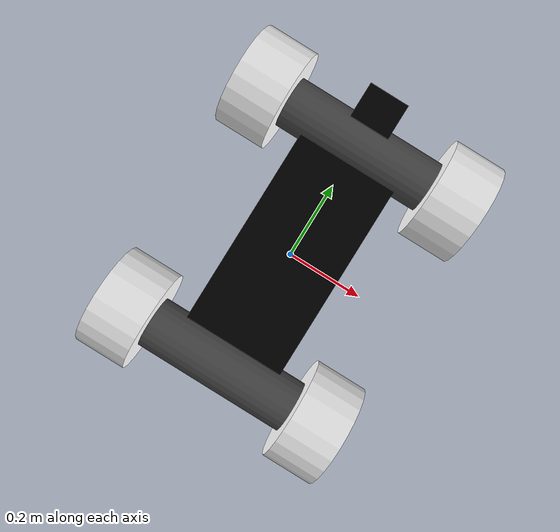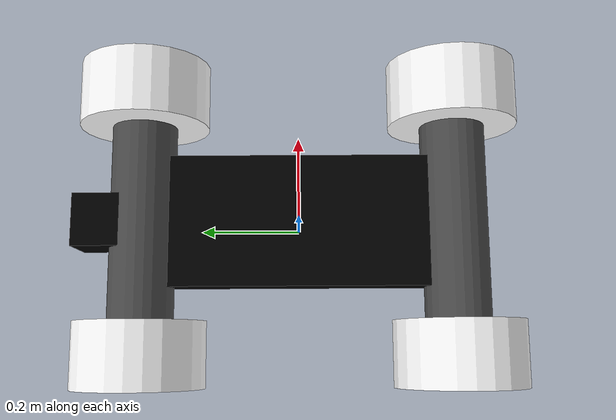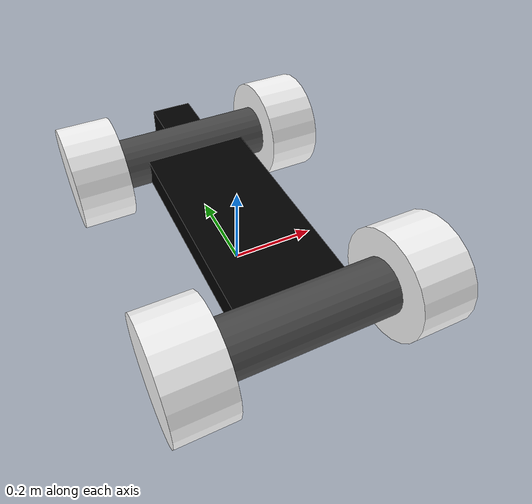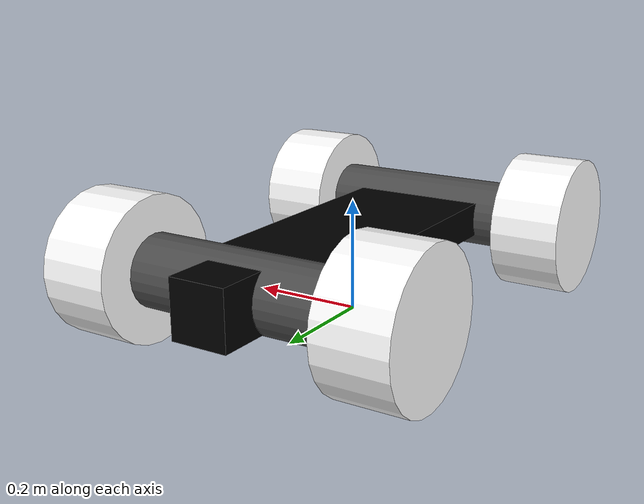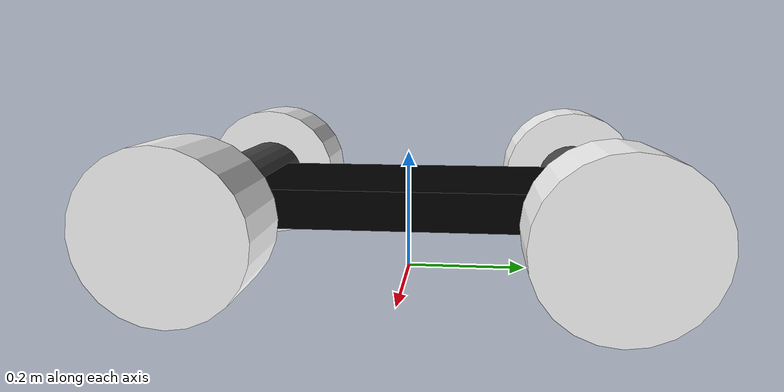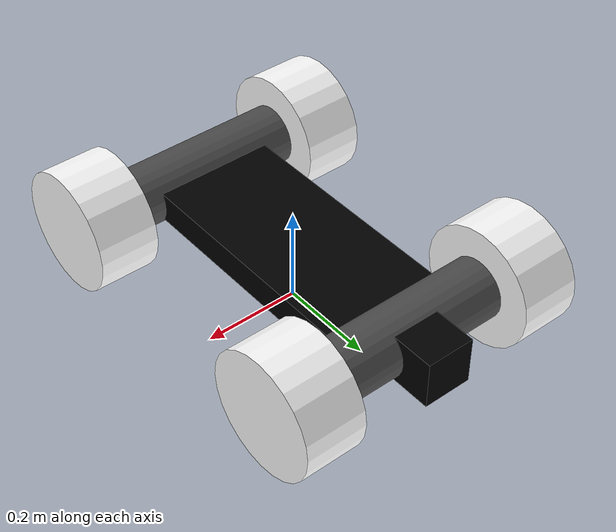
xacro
<?xml version="1.0"?>
<robot name="car_model" xmlns:xacro="http://www.ros.org/wiki/xacro">

        <material name="black">
                <color rgba="0 0 0 1"/>
        </material>
        <material name="blue">
                <color rgba="0 0 0.8 1"/>
        </material>
        <material name="white">
                <color rgba="1 1 1 1"/>
        </material>
        <material name="gray">
                <color rgba="0.3 0.3 0.3 1"/>
        </material>

        <xacro:property name="wheelradius" value="0.125" />
        <xacro:property name="baselength" value="0.5" />
        <xacro:property name="baseheight" value="${wheelradius}" />
        <xacro:property name="axlelength" value="0.4" />
        <xacro:property name="update_rate" value="5.0" />

        <xacro:property name="base_mass" value="1e+0" />
        <xacro:property name="axle_mass" value="1e-1" />
        <xacro:property name="wheel_mass" value="1e+0" />
        <xacro:property name="camera_mass" value="1e-2" />

        <xacro:macro name="gazebo_wheel_elements" >
                <mu1 value="300.0"/>
                <mu2 value="100.0"/>
                <kp value="100000.0" />
                <kd value="1.0" />
                <material>Gazebo/White</material>
        </xacro:macro>

        <xacro:macro name="default_inertial" params="mass">
                <inertial>
                        <mass value="${mass}" />
                        <inertia ixx="${mass*0.01}" ixy="0.0" ixz="0.0" iyy="${mass*0.01}" iyz="0.0" izz="${mass*0.01}" />
                </inertial>
        </xacro:macro>

        <xacro:macro name="world_link">
                <link name="base_footprint">
                        <visual>
                                <geometry>
                                        <box size="0.001 0.001 0.001"/>
                                </geometry>
                                <origin rpy="0 0 0" xyz="0.001 0.001 0.001"/>
                        </visual>
                        <collision>
                                <geometry>
                                        <box size="0.001 0.001 0.001"/>
                                </geometry>
                        </collision>
                        <xacro:default_inertial mass="${base_mass/1000}"/>
                </link>
                <gazebo reference="base_footprint">
                        <material>Gazebo/Green</material>
                </gazebo>
        </xacro:macro>

        <xacro:macro name="car_base">
                <link name="base_link">
                        <visual>
                                <geometry>
                                        <box size="${baselength/2} ${baselength} ${baselength/8}" />
                                </geometry>
                                <material name="black" />
                        </visual>
                        <collision>
                                <geometry>
                                        <box size="${baselength/2} ${baselength} ${baselength/8}" />
                                </geometry>
                        </collision>
                        <xacro:default_inertial mass="${base_mass}"/>
                </link>
                <joint name="base_footprint_joint" type="fixed">
                        <axis xyz="0 0 1" />
                        <parent link="base_footprint" />
                        <child link="base_link" />
                        <origin rpy="0 0 0" xyz="0 0 ${baseheight}" />
                </joint>
                <gazebo reference="base_link">
                        <material>Gazebo/Black</material>
                </gazebo>
        </xacro:macro>

        <xacro:macro name="car_axle" params="frontback position">
               <link name="${frontback}_axle">
                       <visual>
                               <geometry>
                                       <cylinder radius="${baselength/8}" length="${axlelength}" />
                               </geometry>
                               <material name="gray" />
                       </visual>
                       <collision>
                               <geometry>
                                       <cylinder radius="${baselength/8}" length="${axlelength}" />
                               </geometry>
                       </collision>
                       <xacro:default_inertial mass="${axle_mass}"/>
               </link>
               <joint name="${frontback}_axle_to_base" type="fixed">
                       <axis xyz="1 0 0" />
                       <mimic joint="base_footprint_joint" multiplier="1"/>
                       <parent link="base_footprint" />
                       <child link="${frontback}_axle" />
                       <origin rpy="0 -1.57 0" xyz="0 ${position * 0.3} ${baseheight}" />
               </joint>
               <gazebo reference="${frontback}_axle">
                       <material>Gazebo/Grey</material>
               </gazebo>
       </xacro:macro>

        <xacro:macro name="car_wheel" params="frontback leftright fb lr">
                <link name="${frontback}_${leftright}_wheel">
                        <visual>
                                <geometry>
                                        <cylinder radius="${wheelradius}" length="${wheelradius}" />
                                </geometry>
                                <material name="white" />
                        </visual>
                        <collision>
                                <geometry>
                                        <cylinder radius="${wheelradius}" length="${wheelradius}" />
                                </geometry>
                        </collision>
                        <xacro:default_inertial mass="${wheel_mass}"/>
                </link>
                <joint name="${frontback}_${leftright}_wheel_to_${frontback}_axle" type="continuous">
                        <axis xyz="0 0 1" />
                        <parent link="base_footprint" />
                        <child link="${frontback}_${leftright}_wheel" />
                        <origin rpy="0 -1.57 0" xyz="${-lr} ${fb} ${baseheight}" />
                </joint>
                <gazebo reference="${frontback}_${leftright}_wheel">
                        <xacro:gazebo_wheel_elements />
                </gazebo>
        </xacro:macro>

        <xacro:macro name="camera_link" params="height width">
                <link name="camera">
                        <visual>
                                <geometry>
                                        <box size="0.1 0.1 0.1"/>
                                </geometry>
                                <material name="black"/>
                        </visual>
                        <collision>
                                <geometry>
                                        <box size="0.1 0.1 0.1"/>
                                </geometry>
                        </collision>
                        <xacro:default_inertial mass="${camera_mass}"/>
                </link>
                <joint name="camera_joint" type="fixed">
                        <axis xyz="0 0 1" />
                        <origin xyz="0 ${(baselength/2)+(baselength/4)} ${baseheight}" rpy="0 0 1.57"/>
                        <parent link="base_footprint"/>
                        <child link="camera"/>
                </joint>
                <gazebo reference="camera">
                        <material>Gazebo/Black</material>
                        <sensor type="camera" name="car_model_camera">
                                <update_rate>33.3</update_rate>
                                <camera name="camera">
                                        <horizontal_fov>1.3962634</horizontal_fov>
                                        <image>
                                                <width>${width}</width>
                                                <height>${height}</height>
                                                <format>R8G8B8</format>
                                        </image>
                                        <clip>
                                                <near>0.02</near>
                                                <far>300</far>
                                        </clip>
                                        <noise>
                                                <type>gaussian</type>
                                                <mean>0.0</mean>
                                                <stddev>0.007</stddev>
                                        </noise>
                                </camera>
                                <plugin name="camera_controller" filename="libgazebo_ros_camera.so">
                                        <alwaysOn>true</alwaysOn>
                                        <cameraInfoTopicName>camera_info</cameraInfoTopicName>
                                        <cameraName>car_model_camera</cameraName>
                                        <distortionK1>0.0</distortionK1>
                                        <distortionK2>0.0</distortionK2>
                                        <distortionK3>0.0</distortionK3>
                                        <distortionT1>0.0</distortionT1>
                                        <distortionT2>0.0</distortionT2>
                                        <frameName>/odom</frameName>
                                        <hackBaseline>0.07</hackBaseline>
                                        <imageTopicName>image_raw</imageTopicName>
                                        <robotNamespace>car_model</robotNamespace>
                                        <updateRate>0.00</updateRate>
                                </plugin>
                        </sensor>
                </gazebo>
        </xacro:macro>

        <xacro:world_link />
        <xacro:car_base />
        <xacro:camera_link height="240" width="320" />
        <xacro:car_axle frontback="front" position="1" />
        <xacro:car_axle frontback="back" position="-1" />
        <xacro:car_wheel frontback="front" leftright="left" fb="0.3" lr="${(axlelength/2) + 0.05}" />
        <xacro:car_wheel frontback="front" leftright="right" fb="0.3" lr="${-(axlelength/2) - 0.05}" />
        <xacro:car_wheel frontback="back" leftright="left" fb="-0.3" lr="${(axlelength/2) + 0.05}" />
        <xacro:car_wheel frontback="back" leftright="right" fb="-0.3" lr="${-(axlelength/2) - 0.05}" />

        <gazebo>
                <plugin name="skid_steer_drive_controller" filename="libgazebo_ros_skid_steer_drive.so">
                        <broadcastTF>true</broadcastTF>
                        <commandTopic>/cmd_vel</commandTopic>
                        <covariance_x>0.000100</covariance_x>
                        <covariance_y>0.000100</covariance_y>
                        <covariance_yaw>1.57</covariance_yaw>
                        <leftFrontJoint>front_left_wheel_to_front_axle</leftFrontJoint>
                        <leftRearJoint>back_left_wheel_to_back_axle</leftRearJoint>
                        <odometryFrame>odom</odometryFrame>
                        <odometryTopic>/odom</odometryTopic>
                        <rightFrontJoint>front_right_wheel_to_front_axle</rightFrontJoint>
                        <rightRearJoint>back_right_wheel_to_back_axle</rightRearJoint>
                        <robotBaseFrame>base_footprint</robotBaseFrame>
                        <robotNamespace>car_model</robotNamespace>
                        <topicName>/cmd_vel</topicName>
                        <torque>20</torque>
                        <updateRate>100.0</updateRate>
                        <wheelDiameter>${wheelradius * 2}</wheelDiameter>
                        <wheelSeparation>${axlelength}</wheelSeparation>
                </plugin>
                <plugin name="gazebo_ros_control" filename="libgazebo_ros_control.so">
                        <robotNamespace>car_model</robotNamespace>
                </plugin>
        </gazebo>

</robot>
